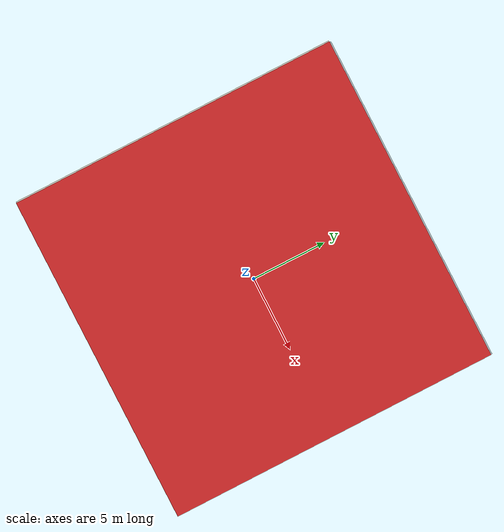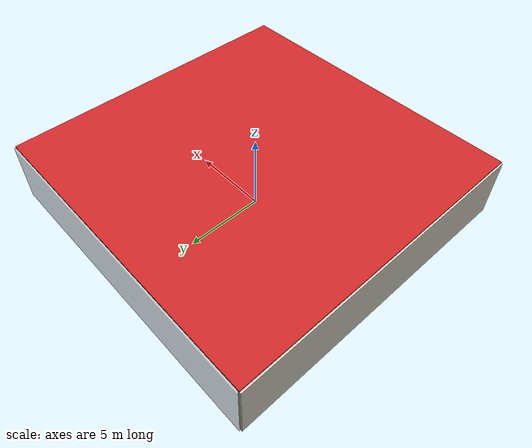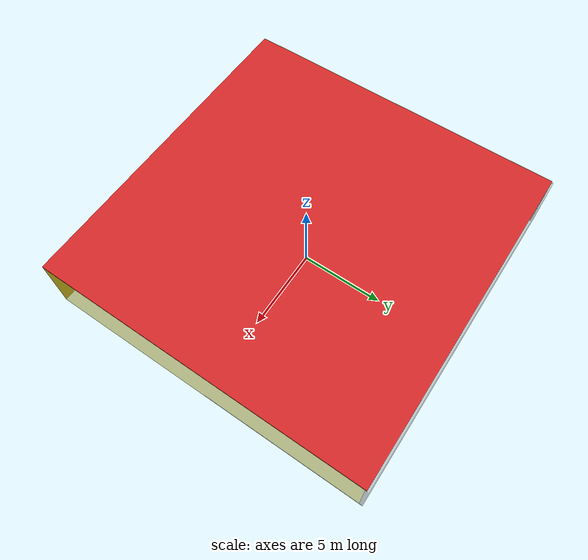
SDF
<sdf version="1.4">
 <world name="default">
  <physics type="ode">
   <max_step_size>0.001</max_step_size>
   <real_time_factor>1</real_time_factor>
   <real_time_update_rate>1000</real_time_update_rate>
   <gravity>0 0 -9.8</gravity>
  </physics>
  <scene><ambient>0.4 0.4 0.4 1</ambient><background>0.7 0.7 0.7 1</background><shadows>1</shadows></scene>
  <model name="Surrounding">
   <static>1</static>
   <link name="Ceiling">
    <collision name="Ceiling_Collision"><geometry><box><size>20 20 0.1</size></box></geometry></collision>
    <visual name="Ceiling_Visual">
     <geometry><box><size>20 20 0.1</size></box></geometry>
     <material>
      <script><uri>file://media/materials/scripts/gazebo.material</uri><name>Gazebo/Red</name></script>
     </material>
    </visual>
    <pose>0 0 4.05 0 0 0</pose>
   </link>
   <link name="Wall_South">
    <collision name="Wall_South_Collision">
     <geometry><box><size>20 0 4</size></box></geometry>
     <pose>0 0 2 0 -0 0</pose>
    </collision>
    <visual name="Wall_South_Visual">
     <pose>0 0 2 0 -0 0</pose>
     <geometry><box><size>20 0 4</size></box></geometry>
     <material>
      <script><uri>file://media/materials/scripts/gazebo.material</uri><name>Gazebo/ZincYellow</name></script>
     </material>
    </visual>
    <velocity_decay><linear>0</linear><angular>0</angular></velocity_decay>
    <pose>0 -10 0 0 -0 0</pose>
   </link>
   <link name="Wall_East">
    <collision name="Wall_21_Collision">
     <geometry><box><size>20 0 4</size></box></geometry>
     <pose>0 0 2 0 -0 0</pose>
    </collision>
    <visual name="Wall_21_Visual">
     <pose>0 0 2 0 -0 0</pose>
     <geometry><box><size>20 0 4</size></box></geometry>
     <material>
      <script>
       <uri>file://media/materials/scripts/gazebo.material</uri>
       <name>Gazebo/YellowTransparent</name>
      </script>
     </material>
    </visual>
    <velocity_decay><linear>0</linear><angular>0</angular></velocity_decay>
    <pose>10 0 0 0 -0 1.5708</pose>
   </link>
   <link name="Wall_North">
    <collision name="Wall_22_Collision">
     <geometry><box><size>20 0.2 4</size></box></geometry>
     <pose>0 0 2 0 -0 0</pose>
    </collision>
    <visual name="Wall_22_Visual">
     <pose>0 0 2 0 -0 0</pose>
     <geometry><box><size>20 0.2 4</size></box></geometry>
     <material>
      <script><uri>file://media/materials/scripts/gazebo.material</uri><name>Gazebo/GreyTransparent</name></script>
     </material>
    </visual>
    <velocity_decay><linear>0</linear><angular>0</angular></velocity_decay>
    <pose>0 10 0 0 -0 0</pose>
   </link>
   <link name="Wall_West">
    <collision name="Wall_23_Collision">
     <geometry><box><size>20 0.2 4</size></box></geometry>
     <pose>0 0 2 0 -0 0</pose>
    </collision>
    <visual name="Wall_23_Visual">
     <pose>0 0 2 0 -0 0</pose>
     <geometry><box><size>20 0.2 4</size></box></geometry>
     <material>
      <script><uri>file://media/materials/scripts/gazebo.material</uri><name>Gazebo/PaintedWall</name></script>
     </material>
    </visual>
    <velocity_decay><linear>0</linear><angular>0</angular></velocity_decay>
    <pose>-10 0 0 0 0 -1.5708</pose>
   </link>
   <link name="Ground_link">
    <collision name="collision">
     <pose>0 0 .05 0 -0 0</pose>
     <geometry><box><size>20 20 0.1</size></box></geometry>
    </collision>
    <visual name="visual">
     <pose>0 0 .05 0 -0 0</pose>
     <geometry><box><size>20 20 0.1</size></box></geometry>
     <material>
      <script><uri>file://media/materials/scripts/gazebo.material</uri><name>Gazebo/GreyTransparent</name></script>
     </material>
    </visual>
   </link>
   <static>1</static>
  </model>
  <spherical_coordinates>
   <surface_model>EARTH_WGS84</surface_model>
   <latitude_deg>0</latitude_deg>
   <longitude_deg>0</longitude_deg>
   <elevation>0</elevation>
   <heading_deg>0</heading_deg>
  </spherical_coordinates>
  <light name="lightball_0" type="diffuse">
   <diffuse>0.8 0.8 0.8 1</diffuse>
   <specular>0.2 0.2 0.2 1</specular>
   <attenuation>
    <range>100</range>
    <constant>0.7</constant>
    <linear>0.01</linear>
    <quadratic>0.001</quadratic>
   </attenuation>
   <direction>-0.5 0.1 -0.9</direction>
   <pose>8.49999516461 -0.91624388125 3.02520390614 0 0 0</pose>
  </light>
  <light name="lightball_1" type="diffuse">
   <diffuse>0.8 0.8 0.8 1</diffuse>
   <specular>0.2 0.2 0.2 1</specular>
   <attenuation>
    <range>100</range>
    <constant>0.7</constant>
    <linear>0.01</linear>
    <quadratic>0.001</quadratic>
   </attenuation>
   <direction>-0.5 0.1 -0.9</direction>
   <pose>6.9088172504 6.33104870768 2.66347958395 0 0 0</pose>
  </light>
  <light name="lightball_2" type="diffuse">
   <diffuse>0.8 0.8 0.8 1</diffuse>
   <specular>0.2 0.2 0.2 1</specular>
   <attenuation>
    <range>100</range>
    <constant>0.7</constant>
    <linear>0.01</linear>
    <quadratic>0.001</quadratic>
   </attenuation>
   <direction>-0.5 0.1 -0.9</direction>
   <pose>-1.18784047391 -0.215975320905 3.57149323844 0 0 0</pose>
  </light>
  <light name="lightball_3" type="diffuse">
   <diffuse>0.8 0.8 0.8 1</diffuse>
   <specular>0.2 0.2 0.2 1</specular>
   <attenuation>
    <range>100</range>
    <constant>0.7</constant>
    <linear>0.01</linear>
    <quadratic>0.001</quadratic>
   </attenuation>
   <direction>-0.5 0.1 -0.9</direction>
   <pose>-9.96028227348 1.77345687424 0.808842849229 0 0 0</pose>
  </light>
  <light name="lightball_4" type="diffuse">
   <diffuse>0.8 0.8 0.8 1</diffuse>
   <specular>0.2 0.2 0.2 1</specular>
   <attenuation>
    <range>100</range>
    <constant>0.7</constant>
    <linear>0.01</linear>
    <quadratic>0.001</quadratic>
   </attenuation>
   <direction>-0.5 0.1 -0.9</direction>
   <pose>-0.636737444508 2.10257746801 1.07945795609 0 0 0</pose>
  </light>
  <light name="lightball_5" type="diffuse">
   <diffuse>0.8 0.8 0.8 1</diffuse>
   <specular>0.2 0.2 0.2 1</specular>
   <attenuation>
    <range>100</range>
    <constant>0.7</constant>
    <linear>0.01</linear>
    <quadratic>0.001</quadratic>
   </attenuation>
   <direction>-0.5 0.1 -0.9</direction>
   <pose>-6.75754169076 -6.32112466655 2.06666874518 0 0 0</pose>
  </light>
  <include><uri>model://table</uri><pose>-4.40298546936 -8.0286821734 0 0 0 1.07645230293</pose></include>
  <include>
   <uri>model://construction_cone</uri>
   <pose>-4.53495124411 -4.24500927048 0 0 0 2.73445498838</pose>
  </include>
  <include><uri>model://table</uri><pose>-1.4728909252 -7.95813076049 0 0 0 2.46881708553</pose></include>
  <include><uri>model://cabinet</uri><pose>1.75631378488 6.75190145216 0 0 0 2.45582487794</pose></include>
 </world>
</sdf>

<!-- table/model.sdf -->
<sdf version="1.5">
  <model name="table">
    <static>true</static>
    <link name="link">
      <collision name="surface">
        <pose>0 0 1.0 0 0 0</pose>
        <geometry>
          <box>
            <size>1.5 0.8 0.03</size>
          </box>
        </geometry>
        <surface>
          <friction>
            <ode>
              <mu>0.6</mu>
              <mu2>0.6</mu2>
            </ode>
          </friction>
        </surface>
      </collision>
      <visual name="visual1">
        <pose>0 0 1.0 0 0 0</pose>
        <geometry>
          <box>
            <size>1.5 0.8 0.03</size>
          </box>
        </geometry>
        <material>
          <script>
            <uri>model://media/materials/scripts/gazebo.material</uri>
            <name>Gazebo/Wood</name>
          </script>
        </material>
      </visual>
      <collision name="front_left_leg">
        <pose>0.68 0.38 0.5 0 0 0</pose>
        <geometry>
          <cylinder>
            <radius>0.02</radius>
            <length>1.0</length>
          </cylinder>
        </geometry>
      </collision>
      <visual name="front_left_leg">
        <pose>0.68 0.38 0.5 0 0 0</pose>
        <geometry>
          <cylinder>
            <radius>0.02</radius>
            <length>1.0</length>
          </cylinder>
        </geometry>
        <material>
          <script>
            <uri>model://media/materials/scripts/gazebo.material</uri>
            <name>Gazebo/Grey</name>
          </script>
        </material>
      </visual>
      <collision name="front_right_leg">
        <pose>0.68 -0.38 0.5 0 0 0</pose>
        <geometry>
          <cylinder>
            <radius>0.02</radius>
            <length>1.0</length>
          </cylinder>
        </geometry>
      </collision>
      <visual name="front_right_leg">
        <pose>0.68 -0.38 0.5 0 0 0</pose>
        <geometry>
          <cylinder>
            <radius>0.02</radius>
            <length>1.0</length>
          </cylinder>
        </geometry>
        <material>
          <script>
            <uri>model://media/materials/scripts/gazebo.material</uri>
            <name>Gazebo/Grey</name>
          </script>
        </material>
      </visual>
      <collision name="back_right_leg">
        <pose>-0.68 -0.38 0.5 0 0 0</pose>
        <geometry>
          <cylinder>
            <radius>0.02</radius>
            <length>1.0</length>
          </cylinder>
        </geometry>
      </collision>
      <visual name="back_right_leg">
        <pose>-0.68 -0.38 0.5 0 0 0</pose>
        <geometry>
          <cylinder>
            <radius>0.02</radius>
            <length>1.0</length>
          </cylinder>
        </geometry>
        <material>
          <script>
            <uri>model://media/materials/scripts/gazebo.material</uri>
            <name>Gazebo/Grey</name>
          </script>
        </material>
      </visual>
      <collision name="back_left_leg">
        <pose>-0.68 0.38 0.5 0 0 0</pose>
        <geometry>
          <cylinder>
            <radius>0.02</radius>
            <length>1.0</length>
          </cylinder>
        </geometry>
      </collision>
      <visual name="back_left_leg">
        <pose>-0.68 0.38 0.5 0 0 0</pose>
        <geometry>
          <cylinder>
            <radius>0.02</radius>
            <length>1.0</length>
          </cylinder>
        </geometry>
        <material>
          <script>
            <uri>model://media/materials/scripts/gazebo.material</uri>
            <name>Gazebo/Grey</name>
          </script>
        </material>
      </visual>
    </link>
  </model>
</sdf>

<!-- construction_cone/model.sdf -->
<sdf version="1.5">
  <model name="Construction Cone">
    <link name="link">
      <collision name="collision">
        <geometry>
          <mesh>
            <scale>10 10 10</scale>
            <uri>file://isr-testbed/construction_cone/meshes/construction_cone.dae</uri>
          </mesh>
        </geometry>
      </collision>
      <visual name="visual">
        <geometry>
          <mesh>
            <scale>10 10 10</scale>
            <uri>file://isr-testbed/construction_cone/meshes/construction_cone.dae</uri>
          </mesh>
        </geometry>
      </visual>
    </link>
  </model>
</sdf>

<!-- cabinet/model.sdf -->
<sdf version="1.5">
  <model name="cabinet">
    <static>true</static>
    <link name="cabinet_bottom_plate">
      <inertial>
        <pose>0 0 -1 0 0 0</pose>
        <inertia>
          <ixx>2.050000</ixx>
          <ixy>0</ixy>
          <ixz>0</ixz>
          <iyy>2.050000</iyy>
          <iyz>0</iyz>
          <izz>2.050000</izz>
        </inertia>
        <mass>25.000000</mass>
      </inertial>
      <collision name="cabinet_bottom_plate_geom">
        <pose>0 0 0.010000 0 0 0</pose>
        <geometry>
          <box>
            <size>0.450000 0.450000 0.020000</size>
          </box>
        </geometry>
      </collision>
      <visual name="cabinet_bottom_plate_geom_visual">
        <pose>0 0 0.010000 0 0 0</pose>
        <geometry>
          <box>
            <size>0.450000 0.450000 0.020000</size>
          </box>
        </geometry>
        <material>
          <script>
            <uri>model://media/materials/scripts/gazebo.material</uri>
            <name>Gazebo/Wood</name>
          </script>
        </material>
      </visual>
      <collision name="cabinet_bottom_plate_geom_cabinet_back_plate">
        <pose>0.235000 0 0.510000 0 0 0</pose>
        <geometry>
          <box>
            <size>0.020000 0.450000 1.020000</size>
          </box>
        </geometry>
      </collision>
      <visual name="cabinet_bottom_plate_geom_cabinet_back_plate_visual">
        <pose>0.235000 0 0.510000 0 0 0</pose>
        <geometry>
          <box>
            <size>0.020000 0.450000 1.020000</size>
          </box>
        </geometry>
        <material>
          <script>
            <uri>model://media/materials/scripts/gazebo.material</uri>
            <name>Gazebo/Wood</name>
          </script>
        </material>
      </visual>
      <collision name="cabinet_bottom_plate_geom_cabinet_left_plate">
        <pose>0 0.235000 0.510000 0 0 0</pose>
        <geometry>
          <box>
            <size>0.450000 0.020000 1.020000</size>
          </box>
        </geometry>
      </collision>
      <visual name="cabinet_bottom_plate_geom_cabinet_left_plate_visual">
        <pose>0 0.235000 0.510000 0 0 0</pose>
        <geometry>
          <box>
            <size>0.450000 0.020000 1.020000</size>
          </box>
        </geometry>
        <material>
          <script>
            <uri>model://media/materials/scripts/gazebo.material</uri>
            <name>Gazebo/Wood</name>
          </script>
        </material>
      </visual>
      <collision name="cabinet_bottom_plate_geom_cabinet_middle_plate">
        <pose>0 0 0.510000 0 0 0</pose>
        <geometry>
          <box>
            <size>0.450000 0.450000 0.020000</size>
          </box>
        </geometry>
      </collision>
      <visual name="cabinet_bottom_plate_geom_cabinet_middle_plate_visual">
        <pose>0 0 0.510000 0 0 0</pose>
        <geometry>
          <box>
            <size>0.450000 0.450000 0.020000</size>
          </box>
        </geometry>
        <material>
          <script>
            <uri>model://media/materials/scripts/gazebo.material</uri>
            <name>Gazebo/Wood</name>
          </script>
        </material>
      </visual>
      <collision name="cabinet_bottom_plate_geom_cabinet_right_plate">
        <pose>0 -0.235000 0.510000 0 0 0</pose>
        <geometry>
          <box>
            <size>0.450000 0.020000 1.020000</size>
          </box>
        </geometry>
      </collision>
      <visual name="cabinet_bottom_plate_geom_cabinet_right_plate_visual">
        <pose>0 -0.235000 0.510000 0 0 0</pose>
        <geometry>
          <box>
            <size>0.450000 0.020000 1.020000</size>
          </box>
        </geometry>
        <material>
          <script>
            <uri>model://media/materials/scripts/gazebo.material</uri>
            <name>Gazebo/Wood</name>
          </script>
        </material>
      </visual>
      <collision name="cabinet_bottom_plate_geom_cabinet_top_plate">
        <pose>0 0 1.010000 0 0 0</pose>
        <geometry>
          <box>
            <size>0.450000 0.450000 0.020000</size>
          </box>
        </geometry>
      </collision>
      <visual name="cabinet_bottom_plate_geom_cabinet_top_plate_visual">
        <pose>0 0 1.010000 0 0 0</pose>
        <geometry>
          <box>
            <size>0.450000 0.450000 0.020000</size>
          </box>
        </geometry>
        <material>
          <script>
            <uri>model://media/materials/scripts/gazebo.material</uri>
            <name>Gazebo/Wood</name>
          </script>
        </material>
      </visual>
    </link>
  </model>
</sdf>
